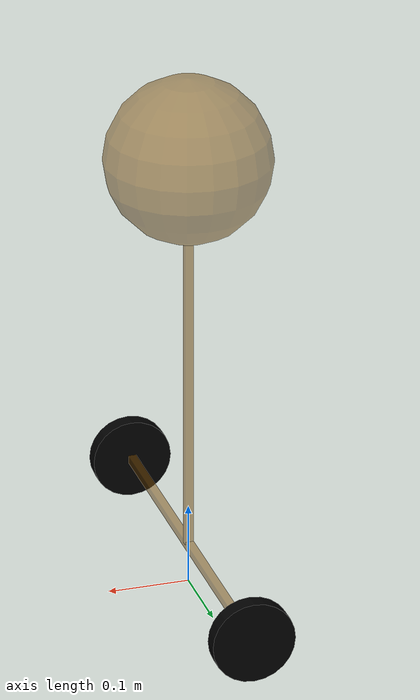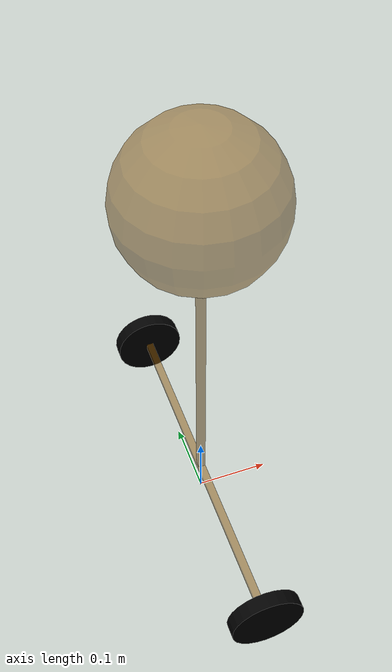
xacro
<!--
    使用 xacro 优化 URDF 版的小车底盘实现：

    实现思路:
    1.将一些常量、变量封装为 xacro:property
      比如:PI 值、小车底盘半径、离地间距、车轮半径、宽度 ....
    2.使用 宏 封装驱动轮以及支撑轮实现，调用相关宏生成驱动轮与支撑轮

-->
<!-- 根标签，必须声明 xmlns:xacro -->
<robot name="my_base" xmlns:xacro="http://www.ros.org/wiki/xacro">
    <!-- 封装变量、常量 -->
    <!-- PI 值设置精度需要高一些，否则后续车轮翻转量计算时，可能会出现肉眼不能察觉的车轮倾斜，从而导致模型抖动 -->
    <xacro:property name="PI" value="3.1415926"/>
    <!-- 宏:黑色设置 -->

    <material name="black">
        <color rgba="0.0 0.0 0.0 1.0" />
    </material>

    <!-- 底盘属性 -->
    <xacro:property name="base_footprint_radius" value="0.001" /> <!-- base_footprint 半径  -->
    <xacro:property name="base_link_m" value="0.05" /> <!-- 质量  -->

    <!-- 驱动轮 -->
    <!-- 驱动轮属性 -->
    <xacro:property name="wheel_radius" value="0.05" /><!-- 半径 -->
    <xacro:property name="wheel_length" value="0.02" /><!-- 宽度 -->
    <xacro:property name="wheel_m" value="0.8" /> <!-- 质量  -->

    <!-- 底盘 -->
    <link name="base_footprint">
      <visual>
        <geometry>
          <sphere radius="${base_footprint_radius}" />
        </geometry>
      </visual>
    </link>

    <link name="base_link">
      <visual>
        <geometry>
          <box size="0.01 0.5 0.01"/>
        </geometry>
        <origin xyz="0 0 0" rpy="0 0 0" />
        <material name="yellow">
          <color rgba="0.5 0.3 0.0 0.5" />
        </material>
      </visual>
      <collision>
        <geometry>
          <box size="0.01 0.5 0.01"/>
        </geometry>
        <origin xyz="0 0 0" rpy="0 0 0" />
      </collision>
      <xacro:Box_inertial_matrix m="0.01" w="0.01" h="0.5" l = "0.01" />
    </link>

    <joint name="base_link2base_footprint" type="fixed">
      <parent link="base_footprint" />
      <child link="base_link" />
      <origin xyz="0 0 ${wheel_radius}" />
    </joint>
    <gazebo reference="base_link">
        <material>Gazebo/Yellow</material>
    </gazebo>

    <link name="vertical_link">
      <visual>
        <geometry>
         <box size="0.01 0.01 0.5"/>
        </geometry>
        <origin xyz="0 0 0" rpy="0 0 0" />
        <material name="yellow">
          <color rgba="0.5 0.3 0.0 0.5" />
        </material>
      </visual>
      <collision>
        <geometry>
          <box size="0.01 0.01 0.5"/>
        </geometry>
        <origin xyz="0 0 0" rpy="0 0 0" />
      </collision>
      <xacro:Box_inertial_matrix m="0.01" w="0.01" h="0.01" l = "0.5" />
    </link>

    <joint name="base2vertial_link" type="fixed">
      <parent link="base_link" />
      <child link="vertical_link" />
      <origin xyz="0 0 0.25" />
    </joint>
    <gazebo reference="vertical_link">
        <material>Gazebo/Yellow</material>
    </gazebo>

    <!-- 驱动轮宏实现 -->
    <xacro:macro name="add_wheels" params="name flag">
      <link name="${name}_wheel">
        <visual>
          <geometry>
            <cylinder radius="${wheel_radius}" length="${wheel_length}" />
          </geometry>
          <origin xyz="0.0 0.0 0.0" rpy="${PI / 2} 0.0 0.0" />
          <material name="black" />
        </visual>
        <collision>
          <geometry>
            <cylinder radius="${wheel_radius}" length="${wheel_length}" />
          </geometry>
          <origin xyz="0.0 0.0 0.0" rpy="${PI / 2} 0.0 0.0" />
        </collision>
        <xacro:cylinder_inertial_matrix m="${wheel_m}" r="${wheel_radius}" h="${wheel_length}" />

      </link>

      <joint name="${name}_wheel_joint" type="continuous">
        <parent link="base_link" />
        <child link="${name}_wheel" />
        <origin xyz="0 ${flag *0.25} 0 " />
        <axis xyz="0 1 0" />
      </joint>

      <gazebo reference="${name}_wheel">
        <material>Gazebo/Black</material>
      </gazebo>

    </xacro:macro>

    <xacro:add_wheels name="left" flag="1" />
    <xacro:add_wheels name="right" flag="-1" />

    <link name="mass_link">
      <visual>
        <geometry>
         <sphere radius = "0.1"/>
        </geometry>
        <origin xyz="0 0 0" rpy="0 0 0" />
        <material name="yellow">
          <color rgba="0.5 0.3 0.0 0.5" />
        </material>
      </visual>
      <collision>
        <geometry>
          <sphere radius = "0.1"/>
        </geometry>
        <origin xyz="0 0 0" rpy="0 0 0" />
      </collision>
      <xacro:sphere_inertial_matrix m="10" r="0.1" />
    </link>

    <joint name="mass2vertial_joint" type="fixed">
      <parent link="vertical_link" />
      <child link="mass_link" />
      <origin xyz="0 0 0.25" />
    </joint>

    <gazebo reference="mass_link">
        <material>Gazebo/Red</material>
    </gazebo>

</robot>
